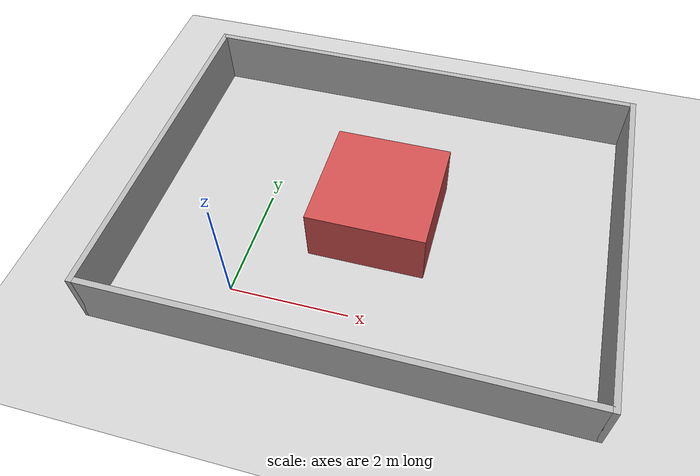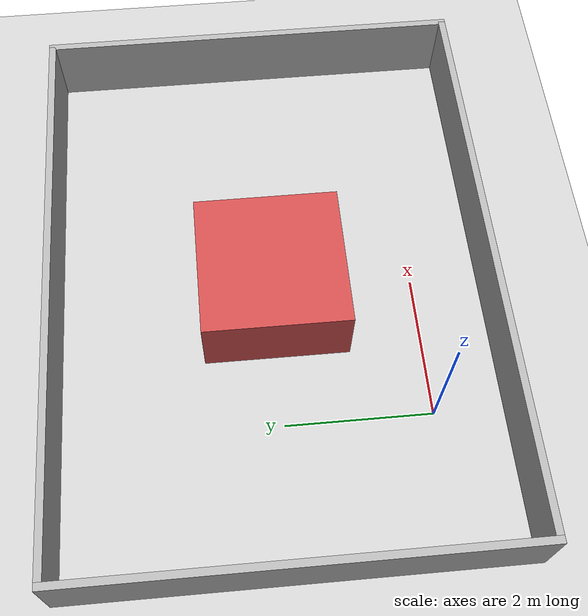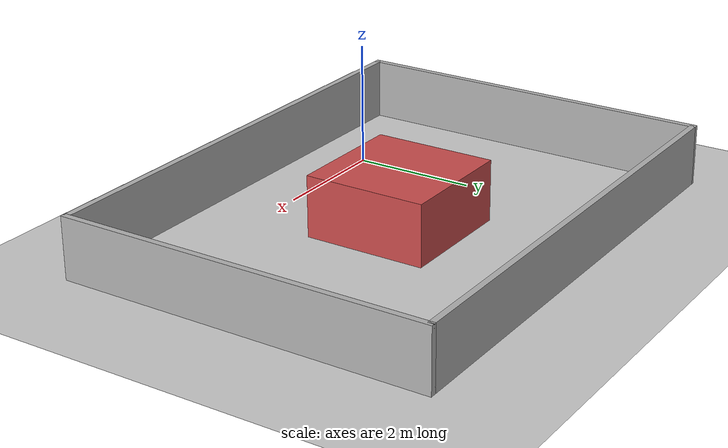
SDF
<?xml version="1.0" ?>
<sdf version="1.5">
  <world name="test2">
    <include><uri>model://sun</uri></include>
    <include><uri>model://ground_plane</uri></include>

    <!-- 외벽 4개 -->
    <model name="wall_bottom">
      <static>true</static>
      <pose>2 -1 0.5 0 0 0</pose>
      <link name="link">
        <collision name="collision"><geometry><box><size>8 0.1 1</size></box></geometry></collision>
        <visual name="visual"><geometry><box><size>8 0.1 1</size></box></geometry><material><ambient>0.7 0.7 0.7 1</ambient></material></visual>
      </link>
    </model>
    <model name="wall_top">
      <static>true</static>
      <pose>2 5 0.5 0 0 0</pose>
      <link name="link">
        <collision name="collision"><geometry><box><size>8 0.1 1</size></box></geometry></collision>
        <visual name="visual"><geometry><box><size>8 0.1 1</size></box></geometry><material><ambient>0.7 0.7 0.7 1</ambient></material></visual>
      </link>
    </model>
    <model name="wall_left">
      <static>true</static>
      <pose>-2 2 0.5 0 0 0</pose>
      <link name="link">
        <collision name="collision"><geometry><box><size>0.1 6.1 1</size></box></geometry></collision>
        <visual name="visual"><geometry><box><size>0.1 6.1 1</size></box></geometry><material><ambient>0.7 0.7 0.7 1</ambient></material></visual>
      </link>
    </model>
    <model name="wall_right">
      <static>true</static>
      <pose>6 2 0.5 0 0 0</pose>
      <link name="link">
        <collision name="collision"><geometry><box><size>0.1 6.1 1</size></box></geometry></collision>
        <visual name="visual"><geometry><box><size>0.1 6.1 1</size></box></geometry><material><ambient>0.7 0.7 0.7 1</ambient></material></visual>
      </link>
    </model>

    <!-- 중앙 사각 장애물 -->
    <model name="center_obstacle">
      <static>true</static>
      <pose>2 2 0.5 0 0 0</pose>
      <link name="link">
        <collision name="collision"><geometry><box><size>2 2 1</size></box></geometry></collision>
        <visual name="visual"><geometry><box><size>2 2 1</size></box></geometry><material><ambient>0.8 0.3 0.3 1</ambient></material></visual>
      </link>
    </model>

  </world>
</sdf>
